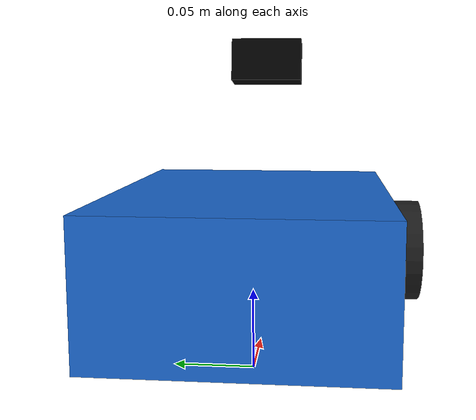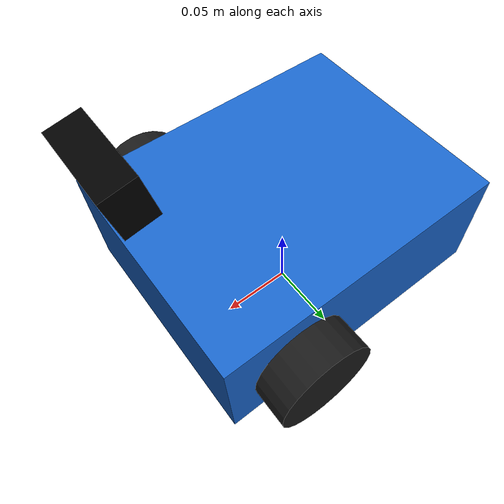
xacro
<?xml version="1.0"?>
<robot name="smart_car" xmlns:xacro="http://ros.org/wiki/xacro">

    <xacro:property name="base_width" value="0.16"/>
    <xacro:property name="base_length" value="0.20"/>
    <xacro:property name="base_height" value="0.08"/>
    <xacro:property name="wheel_radius" value="0.033"/>
    <xacro:property name="wheel_width" value="0.025"/>

    <!-- 基础 footprint -->
    <link name="base_footprint"/>

    <joint name="base_joint" type="fixed">
        <parent link="base_footprint"/>
        <child link="base_link"/>
        <origin xyz="0 0 ${wheel_radius}" rpy="0 0 0"/>
    </joint>

    <!-- 底盘 -->
    <link name="base_link">
        <visual>
            <origin xyz="0 0 ${base_height/2}" rpy="0 0 0"/>
            <geometry>
                <box size="${base_length} ${base_width} ${base_height}"/>
            </geometry>
            <material name="blue">
                <color rgba="0.1 0.4 0.8 1.0"/>
            </material>
        </visual>
        <collision>
            <origin xyz="0 0 ${base_height/2}" rpy="0 0 0"/>
            <geometry>
                <box size="${base_length} ${base_width} ${base_height}"/>
            </geometry>
        </collision>
        <inertial>
            <origin xyz="0 0 ${base_height/2}" rpy="0 0 0"/>
            <mass value="1.0"/>
            <inertia ixx="0.0017" ixy="0.0" ixz="0.0"
                     iyy="0.0021" iyz="0.0" izz="0.0038"/>
        </inertial>
    </link>

    <!-- 左轮宏定义 -->
    <xacro:macro name="wheel" params="prefix x y">
        <link name="${prefix}_wheel_link">
            <visual>
                <origin xyz="0 0 0" rpy="${pi/2} 0 0"/>
                <geometry>
                    <cylinder radius="${wheel_radius}" length="${wheel_width}"/>
                </geometry>
                <material name="black">
                    <color rgba="0.1 0.1 0.1 1.0"/>
                </material>
            </visual>
            <collision>
                <origin xyz="0 0 0" rpy="${pi/2} 0 0"/>
                <geometry>
                    <cylinder radius="${wheel_radius}" length="${wheel_width}"/>
                </geometry>
            </collision>
            <inertial>
                <origin xyz="0 0 0" rpy="${pi/2} 0 0"/>
                <mass value="0.1"/>
                <inertia ixx="0.0001" ixy="0.0" ixz="0.0"
                         iyy="0.0001" iyz="0.0" izz="0.0001"/>
            </inertial>
        </link>
        <joint name="${prefix}_wheel_joint" type="continuous">
            <parent link="base_link"/>
            <child link="${prefix}_wheel_link"/>
            <origin xyz="${x} ${y} ${wheel_radius}" rpy="0 0 0"/>
            <axis xyz="0 1 0"/>
        </joint>
    </xacro:macro>

    <!-- 实例化左右轮 -->
    <xacro:wheel prefix="left" x="0.05" y="${base_width/2 + wheel_width/2}"/>
    <xacro:wheel prefix="right" x="0.05" y="${-base_width/2 - wheel_width/2}"/>

    <!-- 万向轮（支撑轮） -->
    <link name="caster_wheel_link">
        <visual>
            <origin xyz="0 0 0" rpy="0 0 0"/>
            <geometry>
                <sphere radius="0.015"/>
            </geometry>
            <material name="gray">
                <color rgba="0.5 0.5 0.5 1.0"/>
            </material>
        </visual>
        <collision>
            <origin xyz="0 0 0" rpy="0 0 0"/>
            <geometry>
                <sphere radius="0.015"/>
            </geometry>
        </collision>
        <inertial>
            <origin xyz="0 0 0" rpy="0 0 0"/>
            <mass value="0.05"/>
            <inertia ixx="0.00001" ixy="0.0" ixz="0.0"
                     iyy="0.00001" iyz="0.0" izz="0.00001"/>
        </inertial>
    </link>
    <joint name="caster_wheel_joint" type="fixed">
        <parent link="base_link"/>
        <child link="caster_wheel_link"/>
        <origin xyz="${-base_length/2 + 0.03} 0 ${wheel_radius - 0.01}" rpy="0 0 0"/>
    </joint>

    <link name="imu_link"/>
    <joint name="imu_joint" type="fixed">
        <parent link="base_link"/>
        <child link="imu_link"/>
        <origin xyz="0 0 ${base_height}" rpy="0 0 0"/> </joint>

    <gazebo reference="imu_link">
        <sensor name="car_imu" type="imu">
            <always_on>true</always_on>
            <update_rate>200</update_rate> <topic>imu</topic>
            <gz_frame_id>imu_link</gz_frame_id>
        </sensor>
    </gazebo>

    <link name="camera_link">
        <visual>
            <geometry>
                <box size="0.02 0.05 0.03"/>
            </geometry>
            <material name="black">
                <color rgba="0 0 0 1"/>
            </material>
        </visual>
    </link>
    <joint name="camera_joint" type="fixed">
        <parent link="base_link"/>
        <child link="camera_link"/>
        <!-- 抬高摄像头位置（+8cm），并向上抬头10度（绕Y轴） -->
        <origin xyz="${base_length/2} 0 ${base_height + 0.08}" rpy="0 0.17 0"/>
    </joint>

    <link name="camera_optical_link"/>
    <joint name="camera_optical_joint" type="fixed">
        <parent link="camera_link"/>
        <child link="camera_optical_link"/>
        <origin xyz="0 0 0" rpy="-1.5708 0 -1.5708"/>
    </joint>

    <!-- RGB-D 深度相机 -->
    <gazebo reference="camera_link">
        <sensor name="car_camera" type="rgbd_camera">
            <pose>0 0 0 0 0 0</pose>
            <always_on>true</always_on>
            <update_rate>30</update_rate>
            <camera>
                <horizontal_fov>1.3962634</horizontal_fov>
                <image>
                    <width>640</width>
                    <height>480</height>
                    <format>R8G8B8</format>
                </image>
                <clip>
                    <near>0.1</near>
                    <far>10.0</far>
                </clip>
            </camera>
            <topic>camera</topic>
            <gz_frame_id>camera_optical_link</gz_frame_id>
        </sensor>
    </gazebo>

    <gazebo>
        <plugin filename="gz-sim-diff-drive-system" name="gz::sim::systems::DiffDrive">
            <left_joint>left_wheel_joint</left_joint> <right_joint>right_wheel_joint</right_joint> <wheel_separation>${base_width}</wheel_separation>
            <wheel_radius>${wheel_radius}</wheel_radius>
            <odom_publish_frequency>30</odom_publish_frequency>
            <topic>/cmd_vel</topic>
            <odom_topic>/odom</odom_topic>
            <frame_id>odom</frame_id>
            <child_frame_id>base_footprint</child_frame_id>
        </plugin>
    </gazebo>
</robot>
